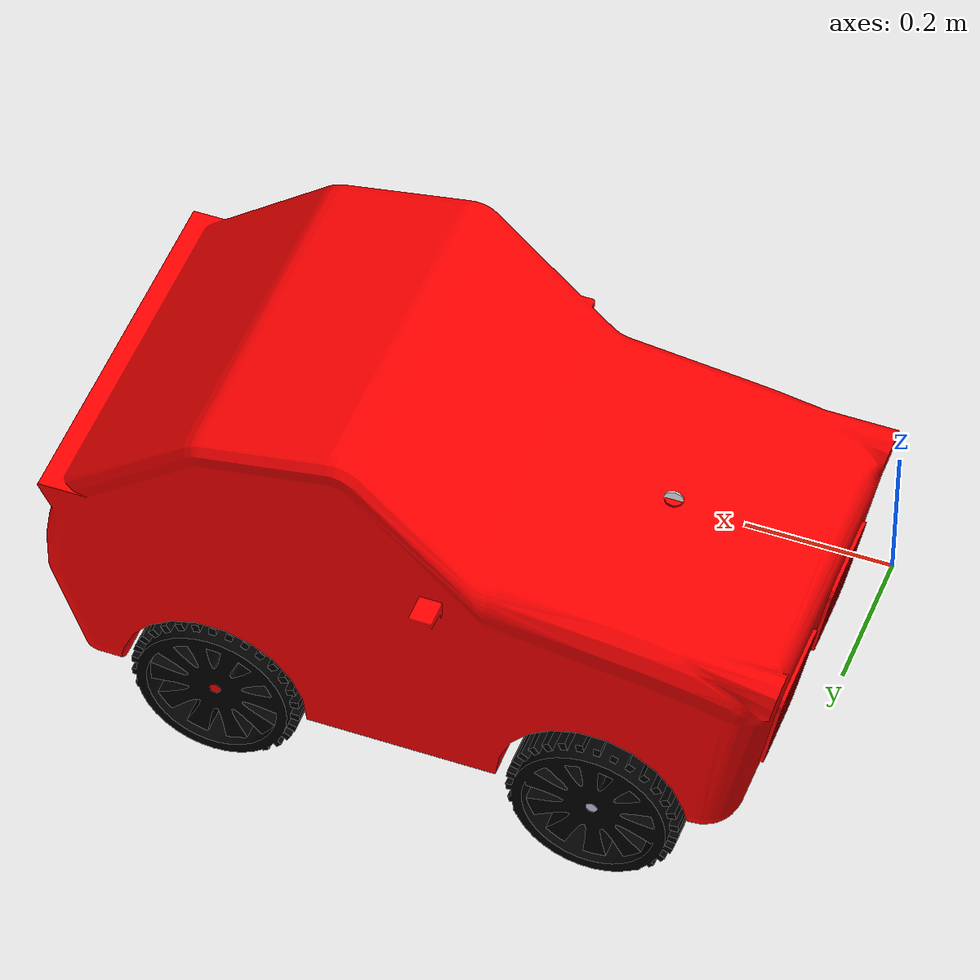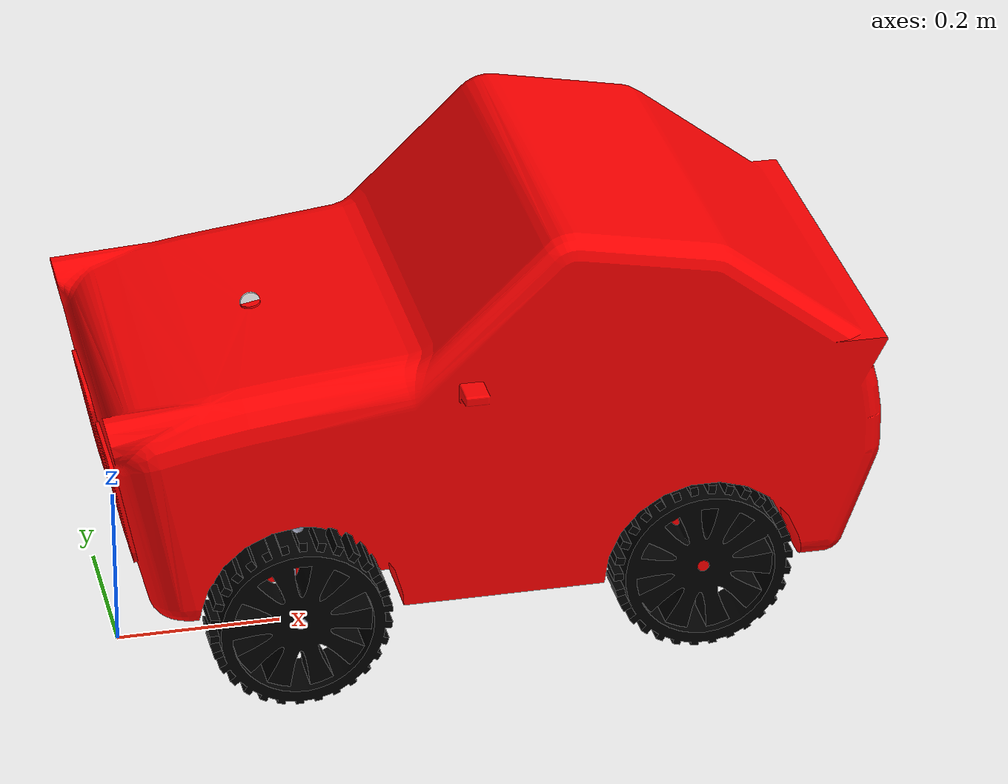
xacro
<?xml version="1.0"?>
<robot
  name="rally_car" xmlns:xacro="http://ros.org/wiki/xacro">
  <xacro:macro name="body_color">
    <visual>
    <material>
      <ambient>1 0 0 1</ambient>
      <diffuse>1 0 0 1</diffuse>
      <specular>0.1 0.1 0.1 1</specular>
      <emissive>0 0 0 0</emissive>
    </material>
    </visual>
  </xacro:macro>
  <xacro:macro name="axle_color">
    <visual>
    <material>
      <ambient>0.792156862745098 0.819607843137255 0.933333333333333 1</ambient>
      <diffuse>0.792156862745098 0.819607843137255 0.933333333333333 1</diffuse>
      <specular>0.1 0.1 0.1 1</specular>
      <emissive>0 0 0 0</emissive>
    </material>
    </visual>
  </xacro:macro>
  <xacro:macro name="wheel_color">
    <visual>
    <material>
      <ambient>0 0 0 1</ambient>
      <diffuse>0 0 0 1</diffuse>
      <specular>0.1 0.1 0.1 1</specular>
      <emissive>0 0 0 0</emissive>
    </material>
    </visual>
  </xacro:macro>
  <xacro:macro name="lidar_color">
    <visual>
    <material>
      <ambient>1 0 0 1</ambient>
      <diffuse>1 0 0 1</diffuse>
      <specular>0.1 0.1 0.1 1</specular>
      <emissive>0 0 0 0</emissive>
    </material>
    </visual>
  </xacro:macro>
  <link name="dummy_link"></link>
  <link
    name="car_body">
    <inertial>
      <origin
        xyz="0.52242 0.254 0.20009"
        rpy="0 0 0" />
      <mass
        value="3" />
      <inertia
        ixx="5.5142"
        ixy="7.7851E-05"
        ixz="-0.83435"
        iyy="12.628"
        iyz="7.7338E-06"
        izz="13.794" />
    </inertial>
    <visual>
      <origin
        xyz="0 0 0"
        rpy="0 0 0" />
      <geometry>
        <mesh
          filename="package://rally_car/meshes/car_body.STL" />
      </geometry>
      <material
        name="">
        <color
          rgba="1 0 0 1" />
      </material>
    </visual>
    <collision>
      <origin
        xyz="0 0 0"
        rpy="0 0 0" />
      <geometry>
        <mesh
          filename="package://rally_car/meshes/car_body.STL" />
      </geometry>
    </collision>
  </link>

  <joint name="dummy_joint" type="fixed">
    <origin rpy="0 0 0" xyz="0 0 0" />
    <parent link="dummy_link"/>
    <child link="car_body"/>
  </joint>

  <link
    name="axle_left">
    <inertial>
      <origin
        xyz="0.037677 0.064593 -3.2989E-05"
        rpy="0 0 0" />
      <mass
        value="0.05553" />
      <inertia
        ixx="0.00019377"
        ixy="2.2692E-05"
        ixz="3.4492E-08"
        iyy="4.1006E-05"
        iyz="-1.9869E-08"
        izz="0.00023317" />
    </inertial>
    <visual>
      <origin
        xyz="0 0 0"
        rpy="0 0 0" />
      <geometry>
        <mesh
          filename="package://rally_car/meshes/axle_left.STL" />
      </geometry>
      <material
        name="">
        <color
          rgba="0.79216 0.81961 0.93333 1" />
      </material>
    </visual>
    <collision>
      <origin
        xyz="0 0 0"
        rpy="0 0 0" />
      <geometry>
        <mesh
          filename="package://rally_car/meshes/axle_left.STL" />
      </geometry>
    </collision>
  </link>
  <joint
    name="car_2_axle_left"
    type="continuous">
    <origin
      xyz="0.22719 0.011999 0"
      rpy="1.5708 0 1.5733" />
    <parent
      link="car_body" />
    <child
      link="axle_left" />
    <axis
      xyz="0 -1 0" />
    <limit
      lower="0"
      upper="0"
      effort="0"
      velocity="0" />
  </joint>
  <link
    name="frontwheel_left">
    <inertial>
      <origin
        xyz="-4.3257E-06 1.0244E-05 0.0127"
        rpy="0 0 0" />
      <mass
        value="1.6723" />
      <inertia
        ixx="0.0060859"
        ixy="-1.3765E-09"
        ixz="-1.7081E-06"
        iyy="0.0060859"
        iyz="4.0451E-06"
        izz="0.011101" />
    </inertial>
    <visual>
      <origin
        xyz="0 0 0"
        rpy="0 0 0" />
      <geometry>
        <mesh
          filename="package://rally_car/meshes/frontwheel_left.STL" />
      </geometry>
      <material
        name="">
        <color
          rgba="0 0 0 1" />
      </material>
    </visual>
    <collision>
      <origin
        xyz="0 0 0"
        rpy="0 0 0" />
      <geometry>
        <mesh
          filename="package://rally_car/meshes/frontwheel_left.STL" />
      </geometry>
    </collision>
  </link>
  <joint
    name="axle_2_wheel_left"
    type="continuous">
    <origin
      xyz="0 -0.01016 0"
      rpy="-1.5708 -0.39955 -1.5708" />
    <parent
      link="axle_left" />
    <child
      link="frontwheel_left" />
    <axis
      xyz="0 0 1" />
  </joint>
  <link
    name="axle_right">
    <inertial>
      <origin
        xyz="0.037677 0.064593 -0.00014587"
        rpy="0 0 0" />
      <mass
        value="0.05553" />
      <inertia
        ixx="0.00019377"
        ixy="2.2692E-05"
        ixz="1.5251E-07"
        iyy="4.1006E-05"
        iyz="-8.7856E-08"
        izz="0.00023317" />
    </inertial>
    <visual>
      <origin
        xyz="0 0 0"
        rpy="0 0 0" />
      <geometry>
        <mesh
          filename="package://rally_car/meshes/axle_right.STL" />
      </geometry>
      <material
        name="">
        <color
          rgba="0.79216 0.81961 0.93333 1" />
      </material>
    </visual>
    <collision>
      <origin
        xyz="0 0 0"
        rpy="0 0 0" />
      <geometry>
        <mesh
          filename="package://rally_car/meshes/axle_right.STL" />
      </geometry>
    </collision>
  </link>
  <joint
    name="car_2_axle_right"
    type="continuous">
    <origin
      xyz="0.22719 0.496 0"
      rpy="1.5708 0 -1.5745" />
    <parent
      link="car_body" />
    <child
      link="axle_right" />
    <axis
      xyz="0 -1 0" />
    <limit
      lower="0"
      upper="0"
      effort="0"
      velocity="0" />
  </joint>
  <link
    name="frontwheel_right">
    <inertial>
      <origin
        xyz="-4.9099E-05 -2.6298E-06 -0.0127"
        rpy="0 0 0" />
      <mass
        value="1.6723" />
      <inertia
        ixx="0.006086"
        ixy="4.0129E-09"
        ixz="1.9388E-05"
        iyy="0.0060859"
        iyz="1.0384E-06"
        izz="0.011101" />
    </inertial>
    <visual>
      <origin
        xyz="0 0 0"
        rpy="0 0 0" />
      <geometry>
        <mesh
          filename="package://rally_car/meshes/frontwheel_right.STL" />
      </geometry>
      <material
        name="">
        <color
          rgba="0 0 0 1" />
      </material>
    </visual>
    <collision>
      <origin
        xyz="0 0 0"
        rpy="0 0 0" />
      <geometry>
        <mesh
          filename="package://rally_car/meshes/frontwheel_right.STL" />
      </geometry>
    </collision>
  </link>
  <joint
    name="axle_2_wheel_right"
    type="continuous">
    <origin
      xyz="0 -0.01016 0"
      rpy="1.5708 -1.5173 -1.5708" />
    <parent
      link="axle_right" />
    <child
      link="frontwheel_right" />
    <axis
      xyz="0 0 1" />
  </joint>
  <link
    name="backwheel_left">
    <inertial>
      <origin
        xyz="-1.1102E-16 3.3307E-16 -0.0254"
        rpy="0 0 0" />
      <mass
        value="1.6723" />
      <inertia
        ixx="0.0060859"
        ixy="-1.7426E-12"
        ixz="-6.8046E-19"
        iyy="0.0060859"
        iyz="-6.902E-19"
        izz="0.011101" />
    </inertial>
    <visual>
      <origin
        xyz="0 0 0"
        rpy="0 0 0" />
      <geometry>
        <mesh
          filename="package://rally_car/meshes/backwheel_left.STL" />
      </geometry>
      <material
        name="">
        <color
          rgba="0 0 0 1" />
      </material>
    </visual>
    <collision>
      <origin
        xyz="0 0 0"
        rpy="0 0 0" />
      <geometry>
        <mesh
          filename="package://rally_car/meshes/backwheel_left.STL" />
      </geometry>
    </collision>
  </link>
  <joint
    name="car_2_wheel_left"
    type="continuous">
    <origin
      xyz="0.73645 0 0.0078439"
      rpy="-1.5708 0.13126 -3.1416" />
    <parent
      link="car_body" />
    <child
      link="backwheel_left" />
    <axis
      xyz="0 0 1" />
  </joint>
  <link
    name="backwheel_right">
    <inertial>
      <origin
        xyz="-3.9413E-15 -4.6629E-15 -0.0381"
        rpy="0 0 0" />
      <mass
        value="1.6723" />
      <inertia
        ixx="0.0060859"
        ixy="1.9066E-12"
        ixz="8.435E-19"
        iyy="0.0060859"
        iyz="-1.7361E-19"
        izz="0.011101" />
    </inertial>
    <visual>
      <origin
        xyz="0 0 0"
        rpy="0 0 0" />
      <geometry>
        <mesh
          filename="package://rally_car/meshes/backwheel_right.STL" />
      </geometry>
      <material
        name="">
        <color
          rgba="0 0 0 1" />
      </material>
    </visual>
    <collision>
      <origin
        xyz="0 0 0"
        rpy="0 0 0" />
      <geometry>
        <mesh
          filename="package://rally_car/meshes/backwheel_right.STL" />
      </geometry>
    </collision>
  </link>
  <joint
    name="car_2_wheel_right"
    type="continuous">
    <origin
      xyz="0.73457 0.4445 0.0080615"
      rpy="1.5708 -1.5362 0" />
    <parent
      link="car_body" />
    <child
      link="backwheel_right" />
    <axis
      xyz="0 0 1" />
  </joint>
  <link
    name="lidar_cylinder">
    <inertial>
      <origin
        xyz="0 0 0"
        rpy="0 0 0" />
      <mass
        value="0" />
      <inertia
        ixx="0"
        ixy="0"
        ixz="0"
        iyy="0"
        iyz="0"
        izz="0" />
    </inertial>
    <visual>
      <origin
        xyz="0 0 0"
        rpy="0 0 0" />
      <geometry>
        <mesh
          filename="package://rally_car/meshes/lidar_cylinder.STL" />
      </geometry>
      <material
        name="">
        <color
          rgba="1 1 1 1" />
      </material>
    </visual>
    <collision>
      <origin
        xyz="0 0 0"
        rpy="0 0 0" />
      <geometry>
        <mesh
          filename="package://rally_car/meshes/lidar_cylinder.STL" />
      </geometry>
    </collision>
  </link>
  <joint
    name="lidar_cylinder_joint"
    type="fixed">
    <origin
      xyz="0.21551 0.254 0.30732"
      rpy="0 0 0" />
    <parent
      link="car_body" />
    <child
      link="lidar_cylinder" />
    <axis
      xyz="0 0 0" />
  </joint>

    <gazebo reference= "lidar_cylinder">
    <sensor name="lidar" type="ray">
      <pose>0.0 0.0 0.0 0 0 0</pose>
      <always_on>true</always_on>
      <visualize>true</visualize>
      <update_rate>5</update_rate>
      <ray>
        <scan>
          <horizontal>
            <samples>360</samples>
            <resolution>1.00000</resolution>
            <min_angle>0.000000</min_angle>
            <max_angle>6.280000</max_angle>
          </horizontal>
        </scan>
        <range>
          <min>0.120000</min>
          <max>3.5</max>
          <resolution>0.015000</resolution>
        </range>
        <noise>
          <type>gaussian</type>
          <mean>0.0</mean>
          <stddev>0.01</stddev>
        </noise>
      </ray>

      <plugin name="scan" filename="libgazebo_ros_ray_sensor.so">
        <ros>
          <remapping>~/out:=scan</remapping>
        </ros>
        <output_type>sensor_msgs/LaserScan</output_type>
        <frame_name>lidar_cylinder</frame_name>
      </plugin>
    </sensor>
  </gazebo>

<gazebo reference="car_body">
  <gravity>true</gravity>
  <sensor name="imu_sensor" type="imu">
    <always_on>true</always_on>
    <update_rate>100</update_rate>
    <visualize>true</visualize>
    <topic>__default_topic__</topic>
    <plugin filename="libgazebo_ros_imu_sensor.so" name="imu_plugin">
      <topicName>imu</topicName>
      <bodyName>car_body</bodyName>
      <updateRateHZ>10.0</updateRateHZ>
      <gaussianNoise>0.0</gaussianNoise>
      <xyzOffset>0 0 0</xyzOffset>
      <rpyOffset>0 0 0</rpyOffset>
      <frameName>car_body</frameName>
      <initialOrientationAsReference>false</initialOrientationAsReference>
    </plugin>
    <pose>0 0 0 0 0 0</pose>
  </sensor>
</gazebo>

  <ros2_control name="GazeboSystem" type="system">
  <hardware>
     <plugin>gazebo_ros2_control/GazeboSystem</plugin>
  </hardware>
# Velocity Controllers

  <joint name="axle_2_wheel_left">
    <command_interface name="velocity">
      <param name="min">-1000.0</param>
      <param name="max">1000.0</param>
    </command_interface>
      <state_interface name="position"/>
      <state_interface name="velocity"/>
  </joint>

  <joint name="axle_2_wheel_right">
    <command_interface name="velocity">
      <param name="min">-1000.0</param>
      <param name="max">1000.0</param>
    </command_interface>
      <state_interface name="position"/>
      <state_interface name="velocity"/>
  </joint>

  <joint name="car_2_wheel_left">
    <command_interface name="velocity">
      <param name="min">-1000.0</param>
      <param name="max">1000.0</param>
    </command_interface>
      <state_interface name="position"/>
      <state_interface name="velocity"/>
  </joint>

  <joint name="car_2_wheel_right">
    <command_interface name="velocity">
      <param name="min">-1000.0</param>
      <param name="max">1000.0</param>
    </command_interface>
      <state_interface name="position"/>
      <state_interface name="velocity"/>
  </joint>

# Position Controller
  <joint name="car_2_axle_left">
    <command_interface name="position">
      <param name="min">-3.14</param>
      <param name="max">3.14</param>
    </command_interface>
      <state_interface name="position"/>
      <state_interface name="velocity"/>
  </joint>

  <joint name="car_2_axle_right">
    <command_interface name="position">
      <param name="min">-3.14</param>
      <param name="max">3.14</param>
    </command_interface>
      <state_interface name="position"/>
      <state_interface name="velocity"/>
  </joint>

  <joint name="axle_2_wheel_left">
    <command_interface name="position">
      <param name="min">-4.712</param>
      <param name="max">4.712</param>
    </command_interface>
      <state_interface name="position"/>
      <state_interface name="velocity"/>
  </joint>

  <joint name="axle_2_wheel_right">
    <command_interface name="position">
      <param name="min">-4.712</param>
      <param name="max">4.712</param>
    </command_interface>
      <state_interface name="position"/>
      <state_interface name="velocity"/>
  </joint>
  </ros2_control>

  <gazebo>
    <plugin filename="libgazebo_ros2_control.so" name="gazebo_ros2_control">
      <parameters>$(find rally_car)/config/control.yaml</parameters>
    </plugin>
  </gazebo>

  <gazebo reference="car_body">
    <xacro:body_color />
  </gazebo>
  <gazebo reference="axle_left">
    <xacro:axle_color />
  </gazebo>
  <gazebo reference="axle_right">
    <xacro:axle_color />
  </gazebo>
  <gazebo reference="frontwheel_left">
    <xacro:wheel_color />
  </gazebo>
  <gazebo reference="frontwheel_right">
    <xacro:wheel_color />
  </gazebo>
  <gazebo reference="backwheel_left">
    <xacro:wheel_color />
  </gazebo>
  <gazebo reference="backwheel_right">
    <xacro:wheel_color />
  </gazebo>
  <gazebo reference="lidar_cylinder">
    <xacro:lidar_color />
  </gazebo>
</robot>
